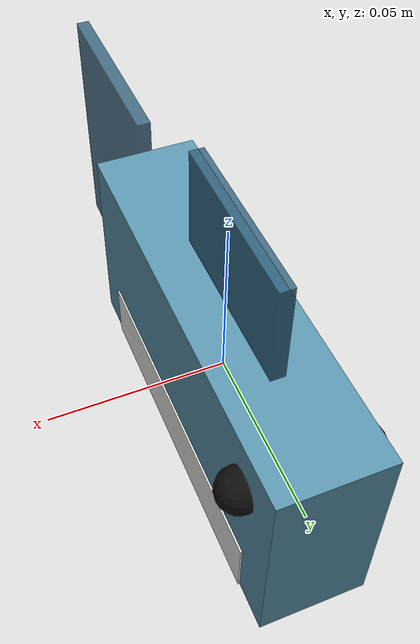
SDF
<?xml version="1.0" ?>
<sdf version="1.7">
  <model name="fish">
    <link name="link">

      <inertial>
        <mass>0.05</mass>
        <inertia>
          <ixx>0.000075</ixx>
          <iyy>0.00001875</iyy>
          <izz>0.00006375</izz>
          <ixy>0</ixy><ixz>0</ixz><iyz>0</iyz>
        </inertia>
      </inertial>

      <collision name="collision">
        <pose>0 0 0 0 0 0</pose>
        <geometry>
          <box><size>0.03 0.12 0.06</size></box>
        </geometry>
        <surface>
          <friction><ode><mu>0.8</mu><mu2>0.8</mu2></ode></friction>
        </surface>
      </collision>

      <!-- main torso -->
      <visual name="body">
        <pose>0 0 0 0 0 0</pose>
        <geometry>
          <box><size>0.03 0.12 0.06</size></box>
        </geometry>
        <material>
          <ambient>0.25 0.45 0.55 1</ambient>
          <diffuse>0.35 0.58 0.68 1</diffuse>
          <specular>0.3 0.3 0.3 1</specular>
        </material>
      </visual>

      <!-- pale belly stripe -->
      <visual name="belly">
        <pose>0 0 -0.021 0 0 0</pose>
        <geometry>
          <box><size>0.031 0.095 0.018</size></box>
        </geometry>
        <material>
          <ambient>0.85 0.85 0.82 1</ambient>
          <diffuse>0.92 0.92 0.90 1</diffuse>
        </material>
      </visual>

      <!-- tail fin, back (-Y) end -->
      <visual name="tail_fin">
        <pose>0 -0.09 0 0 0 0</pose>
        <geometry>
          <box><size>0.004 0.06 0.08</size></box>
        </geometry>
        <material>
          <ambient>0.15 0.30 0.40 0.85</ambient>
          <diffuse>0.20 0.38 0.48 0.85</diffuse>
        </material>
      </visual>

      <!-- dorsal fin, top -->
      <visual name="dorsal_fin">
        <pose>0 0.005 0.045 0 0 0</pose>
        <geometry>
          <box><size>0.004 0.05 0.03</size></box>
        </geometry>
        <material>
          <ambient>0.15 0.30 0.40 0.85</ambient>
          <diffuse>0.20 0.38 0.48 0.85</diffuse>
        </material>
      </visual>

      <!-- eyes, near front (+Y) end -->
      <visual name="eye_left">
        <pose>0.016 0.045 0.015 0 0 0</pose>
        <geometry>
          <sphere><radius>0.006</radius></sphere>
        </geometry>
        <material>
          <ambient>0.02 0.02 0.02 1</ambient>
          <diffuse>0.05 0.05 0.05 1</diffuse>
        </material>
      </visual>

      <visual name="eye_right">
        <pose>-0.016 0.045 0.015 0 0 0</pose>
        <geometry>
          <sphere><radius>0.006</radius></sphere>
        </geometry>
        <material>
          <ambient>0.02 0.02 0.02 1</ambient>
          <diffuse>0.05 0.05 0.05 1</diffuse>
        </material>
      </visual>

    </link>
  </model>
</sdf>
